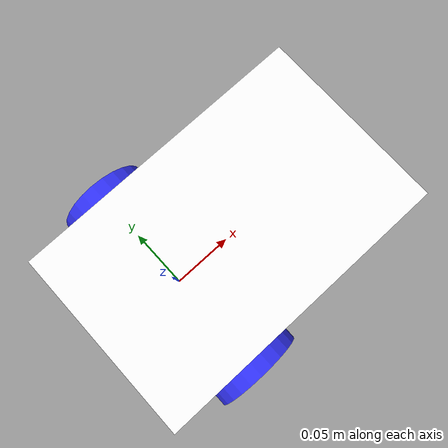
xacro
<?xml version="1.0"?>
<robot xmlns:xacro="http://www.ros.org/wiki/xacro">

    <xacro:include filename="inertial_macros.xacro" />

    <material name="white">
        <color rgba="1 1 1 1"/>
    </material>

    <material name="orange">
        <color rgba="1 0.3 0.1 1"/>
    </material>

    <material name="blue">
        <color rgba="0.2 0.2 1 1"/>
    </material>

    <material name="black">
        <color rgba="0 0 0 1"/>
    </material>

    <!-- ... all our links and joints will go in here ... -->
    <link name="base_link">
    </link>

    <joint name="chassis_joint" type="fixed">
        <parent link="base_link"/>
        <child link="chassis"/>
        <origin xyz="0 0 0"/>
    </joint>

    <link name="chassis">
        <visual>
            <origin xyz="0.055 0 0.0185" rpy="0 0 0"/>
            <geometry>
                <box size="0.25 0.16 0.037"/>
            </geometry>
            <material name="white"/>
        </visual>
        <collision>
            <origin xyz="0.125 0 0.0185" rpy="0 0 0"/>
            <geometry>
                <box size="0.25 0.16 0.037"/>
            </geometry>
        </collision>
        <xacro:inertial_box mass="0.5" x="0.25" y="0.16" z="0.037">
            <origin xyz="0.125 0.0 0.037" rpy="0 0 0"/>
        </xacro:inertial_box>

    </link>
    <gazebo reference="chassis">
        <material>Gazebo/White</material>
    </gazebo>

    <!-- LEFT WHEEL -->

    <joint name="left_wheel_joint" type="continuous">
        <parent link="base_link"/>
        <child link="left_wheel"/>
        <origin xyz="0 0.08 0" rpy="-${pi/2} 0 0"/>
        <!-- the left wheel rotates around the z axis -->
        <axis xyz="0 0 1"/>
    </joint>

    <link name="left_wheel">
        <visual>
            <geometry>
                <cylinder length="0.025" radius="0.037" />
            </geometry>
            <material name="blue"/>
        </visual>
        <collision>
            <geometry>
                <cylinder length="0.025" radius="0.037" />
            </geometry>
        </collision>
        <xacro:inertial_cylinder mass="0.1" length="0.25" radius="0.037">
            <origin xyz="0 0 0" rpy="0 0 0"/>
        </xacro:inertial_cylinder>
    </link>
    <gazebo reference="left_wheel">
        <material>Gazebo/Yellow</material>
    </gazebo>

    <!-- RIGHT WHEEL -->

    <joint name="right_wheel_joint" type="continuous">
        <parent link="base_link"/>
        <child link="right_wheel"/>
        <origin xyz="0 -0.08 0" rpy="${pi/2} 0 0"/>
        <axis xyz="0 0 -1"/>
    </joint>

    <link name="right_wheel">
        <visual>
            <geometry>
                <cylinder length="0.025" radius="0.037" />
            </geometry>
            <material name="blue"/>
        </visual>
        <collision>
            <geometry>
                <cylinder length="0.025" radius="0.037" />
            </geometry>
        </collision>
        <xacro:inertial_cylinder mass="0.1" length="0.25" radius="0.037">
            <origin xyz="0 0 0" rpy="0 0 0"/>
        </xacro:inertial_cylinder>
    </link>
    <gazebo reference="right_wheel">
        <material>Gazebo/Yellow</material>
    </gazebo>

<!-- caster wheel shaft -->

<joint name="caster_wheel_shaft_joint" type="fixed">
        <parent link="chassis"/>
        <child link="caster_wheel_shaft"/>
        <origin xyz="0.175 0 -0.016" rpy="0 0 0"/>
        <axis xyz="0 0 -1"/>
    </joint>

    <link name="caster_wheel_shaft">
        <visual>
            <geometry>
                <cylinder length="0.032" radius="0.005" />
            </geometry>
            <material name="orange"/>
        </visual>
        <collision>
            <geometry>
                <cylinder length="0.032" radius="0.005" />
            </geometry>
        </collision>
    </link>

    <!-- CASTER WHEEL -->

    <joint name="caster_wheel_joint" type="fixed">
        <parent link="caster_wheel_shaft"/>
        <child link="caster_wheel"/>
        <origin xyz="0 0 -0.016" rpy="0 0 0"/>
    </joint>

    <link name="caster_wheel">
        <visual>
            <geometry>
                <sphere radius="0.005" />
            </geometry>
            <material name="blue"/>
        </visual>
        <collision>
            <geometry>
                <sphere radius="0.005" />
            </geometry>
        </collision>
    </link>
    <gazebo reference="caster_wheel">
        <material>Gazebo/Black</material>
        <!-- Very low friction for the caster wheel -->
        <mu1 value="0.001"/>
        <mu2 value="0.001"/>
    </gazebo>

</robot>
